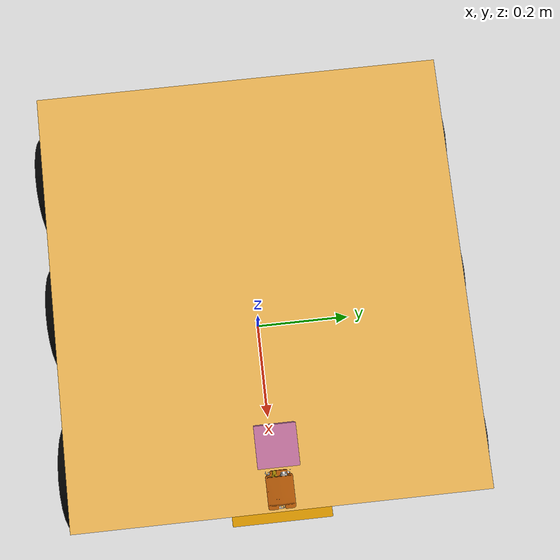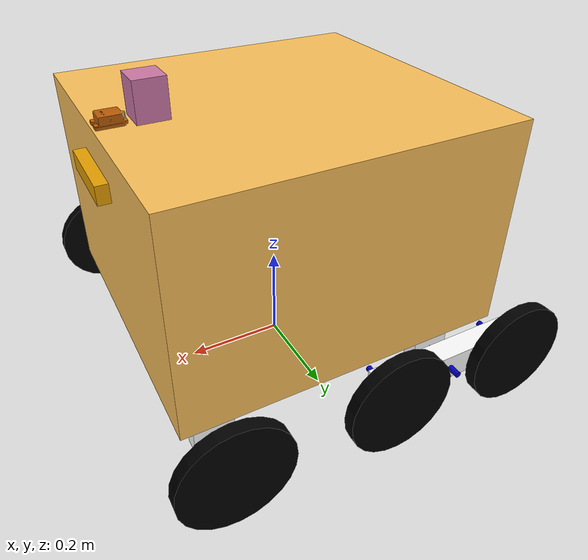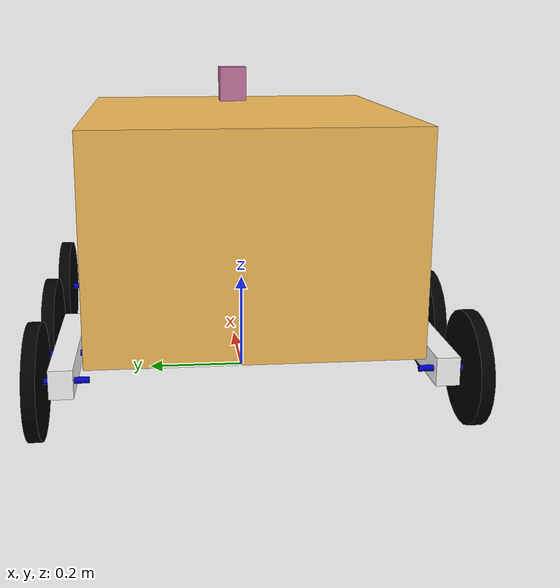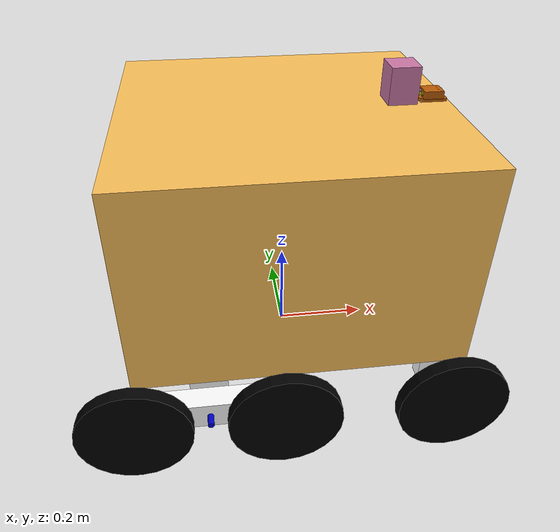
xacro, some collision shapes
<?xml version="1.0"?>
<robot name="model"
       xmlns:xacro="http://www.ros.org/wiki/xacro">

  <xacro:include filename="$(find description)/urdf/parameters.xacro" />
  <xacro:include filename="$(find description)/urdf/utilities.xacro" />

  <xacro:include filename="$(find description)/urdf/base.xacro" />
  <xacro:include filename="$(find description)/urdf/motor_brackets.xacro" />
  <xacro:include filename="$(find description)/urdf/motor_shafts.xacro" />
  <xacro:include filename="$(find description)/urdf/wheels.xacro" />
  <xacro:include filename="$(find description)/urdf/lidar.xacro" />
  <xacro:include filename="$(find description)/urdf/stereo.xacro" />
  <xacro:include filename="$(find description)/urdf/gps_ins.xacro" />

</robot>

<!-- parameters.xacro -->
<robot name="parameters"
       xmlns:xacro="http://www.ros.org/wiki/xacro">

  <!-- Colors -->
  <material name="Black"> <color rgba="0.0 0.0 0.0 1.0"/> </material>
  <material name="Red"> <color rgba="0.8 0.0 0.0 1.0"/> </material>
  <material name="White"> <color rgba="1.0 1.0 1.0 1.0"/> </material>
  <material name="Blue"> <color rgba="0.0 0.0 0.8 1.0"/> </material>
  <material name="Grey"> <color rgba="0.75 0.75 0.75 1.0"/> </material>
  <material name="Yellow"> <color rgba="0.98 0.75 0.35 1.0"/> </material>

  <!-- Base parameters -->
  <xacro:property name="base_length" value="0.671" />
  <xacro:property name="base_width" value="0.631" />
  <xacro:property name="base_height" value="0.432" />
  <xacro:property name="base_mass" value="15" /> <!-- Not measured! -->

  <!-- Motor Bracket parameters -->
  <xacro:property name="motor_bracket_length" value="0.075" /> <!-- Not measured! -->
  <xacro:property name="motor_bracket_width" value="0.030" /> <!-- Not measured! -->
  <xacro:property name="motor_bracket_height" value="0.045" /> <!-- Not measured! -->
  <xacro:property name="motor_bracket_mass" value="0.01" /> <!-- Not measured! -->
  <xacro:property name="motor_bracket_offset_from_base_front" value="0.060" />
  <xacro:property name="motor_bracket_offset_from_base_back" value="0.150" />

  <!-- Motor Shaft parameters -->
  <xacro:property name="motor_shaft_radius" value="0.006" />
  <xacro:property name="motor_shaft_height" value="0.12" /> <!-- Not measured! -->
  <xacro:property name="motor_shaft_mass" value="0.30" /> <!-- Not measured! -->
  <xacro:property name="motor_shaft_offset_from_bracket" value="0.04" /> <!-- Not measured! -->

  <!-- Wheel Balancer parameters -->
  <xacro:property name="wheel_balancer_length" value="0.322" />
  <xacro:property name="wheel_balancer_width" value="0.045" />
  <xacro:property name="wheel_balancer_height" value="0.055" />
  <xacro:property name="wheel_balancer_mass" value="1.5" /> <!-- Not measured! -->
  <xacro:property name="wheel_balancer_offset_from_motor_shaft" value="0.015" /> <!-- Not measured! -->

  <!-- Balancer Shaft parameters -->
  <xacro:property name="balancer_shaft_radius" value="0.006" /> <!-- Not measured! -->
  <xacro:property name="balancer_shaft_height" value="0.10" /> <!-- Not measured! -->
  <xacro:property name="balancer_shaft_mass" value="0.17" /> <!-- Not measured! -->
  <xacro:property name="balancer_shaft_offset_from_balancer_center" value="0.139" />

  <!-- Wheel parameters -->
  <xacro:property name="wheel_radius" value="0.108" />
  <xacro:property name="wheel_height" value="0.025" />
  <xacro:property name="wheel_mass" value="0.65" /> <!-- Not measured! -->
  <xacro:property name="wheel_offset_from_balancer_shaft" value="0.045" /> <!-- Not measured! -->

  <!-- Lidar parameters -->
  <xacro:property name="lidar_length" value="0.06" />
  <xacro:property name="lidar_width" value="0.06" />
  <xacro:property name="lidar_height" value="0.087" />
  <xacro:property name="lidar_mass" value="0.27" />
  <xacro:property name="lidar_reception_plane" value="0.052" />
  <xacro:property name="lidar_offset_from_base_front" value="0.10" />

  <!-- Stereo parameters -->
  <xacro:property name="stereo_length" value="0.0474" />
  <xacro:property name="stereo_width" value="0.157" />
  <xacro:property name="stereo_height" value="0.036" />
  <xacro:property name="stereo_mass" value="0.342" />
  <xacro:property name="stereo_baseline" value="0.12" />
  <xacro:property name="stereo_offset_from_base_top" value="0.085" />

  <!-- GPS/INS parameters -->
  <xacro:property name="gps_ins_length" value="0.07" />
  <xacro:property name="gps_ins_width" value="0.06" />
  <xacro:property name="gps_ins_height" value="0.04" />
  <xacro:property name="gps_ins_mass" value="0.068" />
  <xacro:property name="gps_ins_offset_from_base_front" value="0.03" />
  <xacro:property name="gps_ins_offset_from_base_top" value="0" />

</robot>

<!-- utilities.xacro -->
<robot name="utilities"
       xmlns:xacro="http://www.ros.org/wiki/xacro">

  <xacro:macro name="cylinder_inertia" params="m r h">
    <inertia  ixx="${m*(3*r*r+h*h)/12}" ixy = "0" ixz = "0"
              iyy="${m*(3*r*r+h*h)/12}" iyz = "0"
              izz="${m*r*r/2}" />
  </xacro:macro>

  <xacro:macro name="cuboid_inertia" params="m l w h">
    <inertia  ixx="${m*(w*w+h*h)/12}" ixy = "0" ixz = "0"
              iyy="${m*(l*l+h*h)/12}" iyz = "0"
              izz="${m*(l*l+w*w)/12}" />
  </xacro:macro>

</robot>

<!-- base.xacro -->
<robot name="base"
       xmlns:xacro="http://www.ros.org/wiki/xacro">

<!-- FOOTPRINT -->
  <link name="footprint_link" />

<!-- BASE -->
  <link name="base_link">
    <visual>
        <origin xyz="0 0 0" rpy="0 0 0" />
        <geometry>
            <box size="${base_length} ${base_width} ${base_height}" />
        </geometry>
        <material name="Yellow" />
    </visual>
    <collision>
        <origin xyz="0 0 0" rpy="0 0 0" />
        <geometry>
            <box size="${base_length} ${base_width} ${base_height}" />
        </geometry>
        <material name="Yellow" />
    </collision>
    <inertial>
        <mass value="${base_mass}" />
        <origin xyz="0 0 0" />
        <cuboid_inertia m="${base_mass}" l="${base_length}" w="${base_width}" h="${base_height}" />
    </inertial>
  </link>

  <joint name="base_joint" type="fixed">
    <origin xyz="0 0 ${base_height/2 + motor_bracket_height/2 + wheel_radius}" rpy="0 0 0" />
    <parent link="footprint_link" />
    <child link="base_link" />
  </joint>

</robot>

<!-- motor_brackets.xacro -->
<robot name="motor_brackets"
       xmlns:xacro="http://www.ros.org/wiki/xacro">

  <xacro:macro name="motor_bracket" params="fb lr parent translateX translateY">
    <link name="motor_bracket_${fb}_${lr}_link">
        <visual>
            <origin xyz="0 0 0" rpy="0 0 0" />
            <geometry>
                <box size="${motor_bracket_length} ${motor_bracket_width} ${motor_bracket_height}" />
            </geometry>
            <material name="White" />
        </visual>
        <collision>
            <origin xyz="0 0 0" rpy="0 0 0" />
            <geometry>
                <box size="${motor_bracket_length} ${motor_bracket_width} ${motor_bracket_height}" />
            </geometry>
            <material name="White" />
        </collision>
        <inertial>
            <mass value="${motor_bracket_mass}" />
            <origin xyz="0 0 0" />
            <cuboid_inertia m="${motor_bracket_mass}" l="${motor_bracket_length}" w="${motor_bracket_width}" h="${motor_bracket_height}" />
        </inertial>
    </link>

    <joint name="motor_bracket_${fb}_${lr}_joint" type="fixed">
        <parent link="${parent}_link" />
        <child link="motor_bracket_${fb}_${lr}_link" />
        <origin xyz="${translateX}
                     ${translateY}
                     ${- base_height/2 - motor_bracket_height/2}"
                rpy="0 0 0" />
    </joint>
  </xacro:macro>

<!-- MOTOR BRACKETS -->
  <motor_bracket fb="front" lr="left" parent="base"
                               		translateX="${base_length/2 - motor_bracket_offset_from_base_front}"
                               		translateY="${base_width/2 - motor_bracket_width/2}" />
  <motor_bracket fb="front" lr="right" parent="base"
                               		translateX="${base_length/2 - motor_bracket_offset_from_base_front}"
                               		translateY="${- base_width/2 + motor_bracket_width/2}" />
  <motor_bracket fb="back" lr="left" parent="base"
                               		translateX="${- base_length/2 + motor_bracket_offset_from_base_back}"
                               		translateY="${base_width/2 - motor_bracket_width/2}" />
  <motor_bracket fb="back" lr="right" parent="base"
                               		translateX="${- base_length/2 + motor_bracket_offset_from_base_back}"
                               		translateY="${- base_width/2 + motor_bracket_width/2}" />

</robot>

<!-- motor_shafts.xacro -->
<robot name="motor_shafts"
       xmlns:xacro="http://www.ros.org/wiki/xacro">

  <xacro:macro name="motor_shaft" params="fb lr parent translateY">
    <link name="motor_shaft_${fb}_${lr}_link">
        <visual>
            <origin xyz="0 0 0" rpy="${pi/2} 0 0" />
            <geometry>
                <cylinder length="${motor_shaft_height}" radius="${motor_shaft_radius}" />
            </geometry>
            <material name="Blue" />
        </visual>
        <collision>
            <origin xyz="0 0 0" rpy="${pi/2} 0 0" />
            <geometry>
                <cylinder length="${motor_shaft_height}" radius="${motor_shaft_radius}" />
            </geometry>
            <material name="Blue" />
        </collision>
        <inertial>
            <mass value="${motor_shaft_mass}" />
            <origin xyz="0 0 0" />
            <cylinder_inertia  m="${motor_shaft_mass}" r="${motor_shaft_radius}" h="${motor_shaft_height}" />
        </inertial>
    </link>

    <joint name="motor_shaft_${fb}_${lr}_joint" type="continuous">
        <parent link="${parent}_${fb}_${lr}_link" />
        <child link="motor_shaft_${fb}_${lr}_link" />
        <origin xyz="0
                     ${translateY}
                     0"
                rpy="0 0 0" />
        <axis xyz="0 1 0" rpy="0 0 0" />
        <dynamics damping="0.1" friction="0.5" />
    </joint>
  </xacro:macro>

  <xacro:macro name="wheel_balancer" params="lr parent translateY">
    <link name="wheel_balancer_${lr}_link">
        <visual>
            <origin xyz="0 0 0" rpy="0 0 0" />
            <geometry>
                <box size="${wheel_balancer_length} ${wheel_balancer_width} ${wheel_balancer_height}" />
            </geometry>
            <material name="White" />
        </visual>
        <collision>
            <origin xyz="0 0 0" rpy="0 0 0" />
            <geometry>
                <box size="${wheel_balancer_length} ${wheel_balancer_width} ${wheel_balancer_height}" />
            </geometry>
            <material name="White" />
        </collision>
        <inertial>
            <mass value="${wheel_balancer_mass}" />
            <origin xyz="0 0 0" />
            <cuboid_inertia m="${wheel_balancer_mass}" l="${wheel_balancer_length}" w="${wheel_balancer_width}" h="${wheel_balancer_height}" />
	</inertial>
    </link>

    <joint name="wheel_balancer_${lr}_joint" type="fixed">
        <parent link="${parent}_back_${lr}_link" />
        <child link="wheel_balancer_${lr}_link" />
        <origin xyz="0
                     ${translateY}
                     0"
                rpy="0 0 0" />
    </joint>
  </xacro:macro>

  <xacro:macro name="balancer_shaft" params="fb lr parent translateX">
    <link name="balancer_shaft_${fb}_${lr}_link">
        <visual>
            <origin xyz="0 0 0" rpy="${pi/2} 0 0" />
            <geometry>
                <cylinder length="${balancer_shaft_height}" radius="${balancer_shaft_radius}" />
            </geometry>
            <material name="Blue" />
        </visual>
        <collision>
            <origin xyz="0 0 0" rpy="${pi/2} 0 0" />
            <geometry>
                <cylinder length="${balancer_shaft_height}" radius="${balancer_shaft_radius}" />
            </geometry>
            <material name="Blue" />
        </collision>
        <inertial>
            <mass value="${balancer_shaft_mass}" />
            <origin xyz="0 0 0" />
            <cylinder_inertia  m="${balancer_shaft_mass}" r="${balancer_shaft_radius}" h="${balancer_shaft_height}" />
        </inertial>
    </link>

    <joint name="balancer_shaft_${fb}_${lr}_joint" type="continuous">
        <parent link="${parent}_${lr}_link" />
        <child link="balancer_shaft_${fb}_${lr}_link" />
        <origin xyz="${translateX}
                     0
                     0"
                rpy="0 0 0" />
        <axis xyz="0 1 0" rpy="0 0 0" />
        <dynamics damping="0.1" friction="0.5" />
    </joint>
  </xacro:macro>

<!-- MOTOR SHAFTS -->
  <motor_shaft fb="front" lr="left" parent="motor_bracket" translateY="${motor_shaft_offset_from_bracket}" />
  <motor_shaft fb="front" lr="right" parent="motor_bracket" translateY="${-motor_shaft_offset_from_bracket}" />
  <motor_shaft fb="back" lr="left" parent="motor_bracket" translateY="${motor_shaft_offset_from_bracket}" />
  <motor_shaft fb="back" lr="right" parent="motor_bracket" translateY="${-motor_shaft_offset_from_bracket}" />

  <wheel_balancer lr="left" parent="motor_shaft" translateY="${wheel_balancer_offset_from_motor_shaft}" />
  <wheel_balancer lr="right" parent="motor_shaft" translateY="${-wheel_balancer_offset_from_motor_shaft}" />

  <balancer_shaft fb="middle" lr="left" parent="wheel_balancer" translateX="${balancer_shaft_offset_from_balancer_center}" />
  <balancer_shaft fb="middle" lr="right" parent="wheel_balancer" translateX="${balancer_shaft_offset_from_balancer_center}" />
  <balancer_shaft fb="back" lr="left" parent="wheel_balancer" translateX="${-balancer_shaft_offset_from_balancer_center}" />
  <balancer_shaft fb="back" lr="right" parent="wheel_balancer" translateX="${-balancer_shaft_offset_from_balancer_center}" />

</robot>

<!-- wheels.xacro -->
<robot name="wheels"
       xmlns:xacro="http://www.ros.org/wiki/xacro">

  <xacro:macro name="wheel" params="fb lr shaft translateY">
    <link name="wheel_${fb}_${lr}_link">
        <visual>
            <origin xyz="0 0 0" rpy="${pi/2} 0 0" />
            <geometry>
                <cylinder length="${wheel_height}" radius="${wheel_radius}" />
            </geometry>
            <material name="Black" />
        </visual>
        <collision>
            <origin xyz="0 0 0" rpy="${pi/2} 0 0" />
            <geometry>
                <cylinder length="${wheel_height}" radius="${wheel_radius}" />
            </geometry>
            <material name="Black" />
        </collision>
        <inertial>
            <mass value="${wheel_mass}" />
            <origin xyz="0 0 0" />
            <cylinder_inertia  m="${wheel_mass}" r="${wheel_radius}" h="${wheel_height}" />
        </inertial>
    </link>

    <joint name="wheel_${fb}_${lr}_joint" type="fixed">
        <parent link="${shaft}_shaft_${fb}_${lr}_link" />
        <child link="wheel_${fb}_${lr}_link" />
        <origin xyz="0
                     ${translateY}
                     0"
                rpy="0 0 0" />
    </joint>
  </xacro:macro>

<!-- WHEELS -->
  <wheel fb="front" lr="left" shaft="motor" translateY="${wheel_offset_from_balancer_shaft + wheel_balancer_offset_from_motor_shaft}" />
  <wheel fb="front" lr="right" shaft="motor" translateY="${-wheel_offset_from_balancer_shaft - wheel_balancer_offset_from_motor_shaft}" />
  <wheel fb="middle" lr="left" shaft="balancer" translateY="${wheel_offset_from_balancer_shaft}" />
  <wheel fb="middle" lr="right" shaft="balancer" translateY="${-wheel_offset_from_balancer_shaft}" />
  <wheel fb="back" lr="left" shaft="balancer" translateY="${wheel_offset_from_balancer_shaft}" />
  <wheel fb="back" lr="right" shaft="balancer" translateY="${-wheel_offset_from_balancer_shaft}" />

</robot>

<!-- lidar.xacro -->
<robot name="lidar"
       xmlns:xacro="http://www.ros.org/wiki/xacro">

<!-- LIDAR -->
  <link name="lidar_link">
    <visual>
        <origin xyz="0 0 0" rpy="0 0 0" />
        <geometry>
            <mesh filename="package://description/model/UTM-30LX/mesh/UTM-30LX.dae" />
        </geometry>
    </visual>
    <collision>
        <origin xyz="0 0 ${-lidar_height/8}" rpy="0 0 0" />
        <geometry>
            <box size="${lidar_length} ${lidar_width} ${lidar_height}" />
        </geometry>
    </collision>
    <inertial>
        <mass value="${lidar_mass}" />
        <origin xyz="0 0 0" />
        <inertia ixx="2.632e-4" ixy="0" ixz="0"
                 iyy="2.632e-4" iyz="0"
                 izz="1.62e-4" />
    </inertial>
  </link>

  <joint name="lidar_joint" type="fixed">
    <origin xyz="${base_length/2 - lidar_offset_from_base_front}
                 0
                 ${base_height/2 + lidar_height/2}" rpy="0 0 0" />
    <parent link="base_link" />
    <child link="lidar_link" />
  </joint>

  <link name="lidar_point_link" />

  <joint name="lidar_point_joint" type="fixed">
    <origin xyz="0 0 ${- lidar_height/2 + lidar_reception_plane}" rpy="0 0 0" />
    <parent link="lidar_link" />
    <child link="lidar_point_link" />
  </joint>

</robot>

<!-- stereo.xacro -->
<robot name="stereo"
       xmlns:xacro="http://www.ros.org/wiki/xacro">

<!-- STEREO -->
  <link name="stereo_link">
    <visual>
        <origin xyz="0 0 0" rpy="${pi/2} 0 ${pi/2}" />
        <geometry>
            <mesh filename="package://description/model/Bumblebee-2/mesh/Bumblebee-2.dae" />
        </geometry>
    </visual>
    <collision>
        <origin xyz="0 0 0" rpy="0 0 0" />
        <geometry>
            <box size="${stereo_length} ${stereo_width} ${stereo_height}" />
        </geometry>
    </collision>
    <inertial>
        <mass value="${stereo_mass}" />
        <origin xyz="0 0 0" />
        <cuboid_inertia m="${stereo_mass}" l="${stereo_length}" w="${stereo_width}" h="${stereo_height}" />
    </inertial>
  </link>

  <joint name="stereo_joint" type="fixed">
    <origin xyz="${base_length/2}
                 0
                 ${base_height/2 - stereo_offset_from_base_top}" rpy="0 0 0" />
    <parent link="base_link" />
    <child link="stereo_link" />
  </joint>

  <link name="stereo_left_optical_link" />

  <joint name="stereo_left_optical_joint" type="fixed">
    <origin xyz="${stereo_height/2} ${stereo_baseline/2} 0" rpy="${-pi/2} 0 ${-pi/2}" />
    <parent link="stereo_link" />
    <child link="stereo_left_optical_link" />
  </joint>

  <link name="stereo_right_optical_link" />

  <joint name="stereo_right_optical_joint" type="fixed">
    <origin xyz="${stereo_height/2} ${-stereo_baseline/2} 0" rpy="${-pi/2} 0 ${-pi/2}" />
    <parent link="stereo_link" />
    <child link="stereo_right_optical_link" />
  </joint>

</robot>

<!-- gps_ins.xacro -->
<robot name="imu"
       xmlns:xacro="http://www.ros.org/wiki/xacro">

<!-- GPS/INS -->
  <link name="gps_ins_link">
    <visual>
      <origin xyz="0 0 0" rpy="0 0 0" />
      <geometry>
        <mesh filename="package://description/model/MTi-G/mesh/MTi-G.dae" />
      </geometry>
    </visual>
    <collision>
      <origin xyz="0 0 0" rpy="0 0 0" />
      <geometry>
        <box size="${gps_ins_length} ${gps_ins_width} ${gps_ins_height}" />
      </geometry>
    </collision>
    <inertial>
      <mass value="${gps_ins_mass}" />
      <origin xyz="0 0 0" />
      <cuboid_inertia m="${gps_ins_mass}" l="${gps_ins_length}" w="${gps_ins_width}" h="${gps_ins_height}" />
    </inertial>
  </link>

  <joint name="gps_ins_joint" type="fixed">
    <origin xyz="${base_length/2 - gps_ins_offset_from_base_front}
                 0
                 ${base_height/2 - gps_ins_offset_from_base_top}" rpy="0 0 0" />
    <parent link="base_link" />
    <child link="gps_ins_link" />
  </joint>

  <link name="gps_ins_point_link" />

  <joint name="gps_ins_point_joint" type="fixed">
    <origin xyz="0 0 0" rpy="${pi} 0 0" />
    <parent link="gps_ins_link" />
    <child link="gps_ins_point_link" />
  </joint>

</robot>
